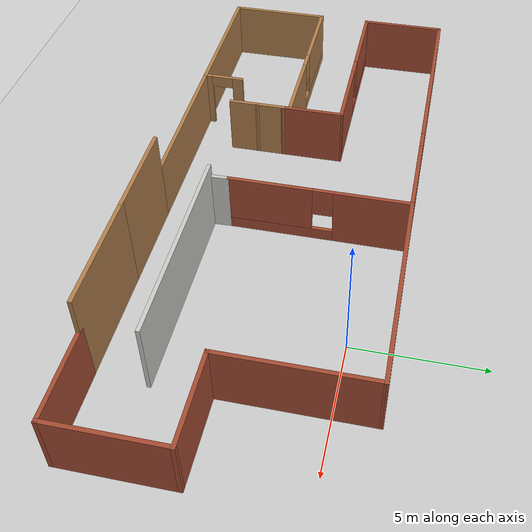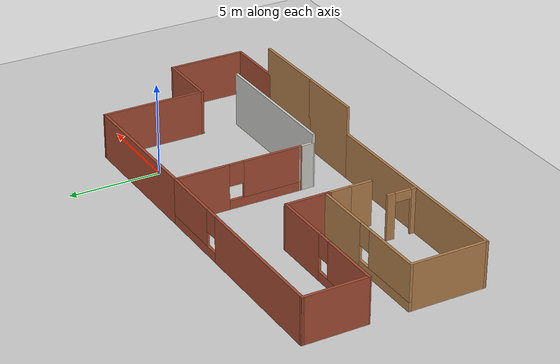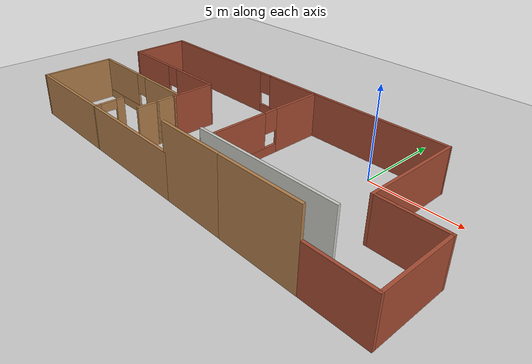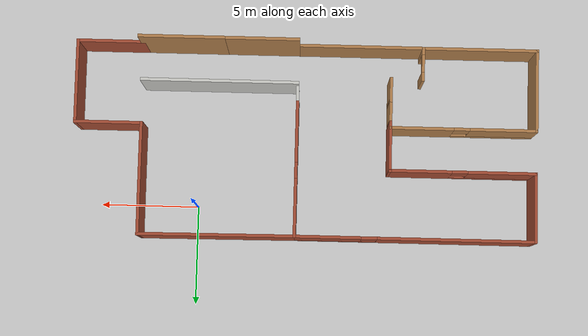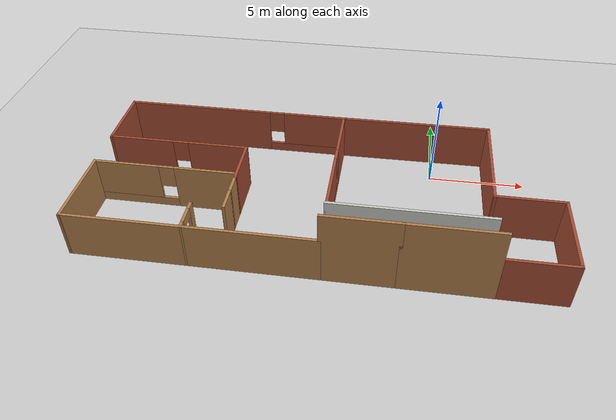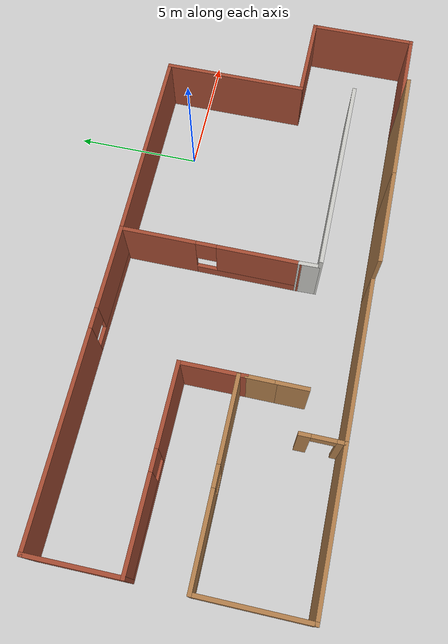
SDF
<sdf version="1.6">
 <world name="default">
  <model name="ground_plane">
   <static>1</static>
   <link name="link">
    <collision name="collision">
     <geometry><plane><normal>0 0 1</normal><size>100 100</size></plane></geometry>
     <surface>
      <contact><collide_bitmask>65535</collide_bitmask></contact>
      <friction><ode><mu>100</mu><mu2>50</mu2></ode></friction>
     </surface>
    </collision>
    <visual name="visual">
     <cast_shadows>0</cast_shadows>
     <geometry><plane><normal>0 0 1</normal><size>100 100</size></plane></geometry>
     <material>
      <script><uri>file://media/materials/scripts/gazebo.material</uri><name>Gazebo/Grey</name></script>
     </material>
    </visual>
   </link>
  </model>
  <model name="robot_house_space">
   <pose>-5.45028 -3.2823 0 0 -0 0</pose>
   <link name="Wall_31">
    <collision name="Wall_31_Collision">
     <geometry><box><size>2.61436 0.15 2.5</size></box></geometry>
     <pose>0 0 1.25 0 -0 0</pose>
    </collision>
    <visual name="Wall_31_Visual">
     <pose>0 0 1.25 0 -0 0</pose>
     <geometry><box><size>2.61436 0.15 2.5</size></box></geometry>
     <material>
      <script><uri>file://media/materials/scripts/gazebo.material</uri><name>Gazebo/Bricks</name></script>
      <ambient>1 1 1 1</ambient>
     </material>
     <meta><layer>0</layer></meta>
    </visual>
    <pose>-4.28923 0.164965 0 0 -0 1.57401</pose>
   </link>
   <link name="Wall_32">
    <pose>-7.96819 1.397 0 0 -0 3.14159</pose>
    <visual name="Wall_32_Visual_0">
     <pose>-2.14641 0 1.25 0 -0 0</pose>
     <geometry><box><size>3.20718 0.15 2.5</size></box></geometry>
     <material>
      <script><uri>file://media/materials/scripts/gazebo.material</uri><name>Gazebo/Bricks</name></script>
      <ambient>1 1 1 1</ambient>
     </material>
     <meta><layer>0</layer></meta>
    </visual>
    <collision name="Wall_32_Collision_0">
     <geometry><box><size>3.20718 0.15 2.5</size></box></geometry>
     <pose>-2.14641 0 1.25 0 -0 0</pose>
    </collision>
    <visual name="Wall_32_Visual_1">
     <pose>1.60359 0 0.25 0 -0 0</pose>
     <geometry><box><size>4.29282 0.15 0.5</size></box></geometry>
     <material>
      <script><uri>file://media/materials/scripts/gazebo.material</uri><name>Gazebo/Bricks</name></script>
      <ambient>1 1 1 1</ambient>
     </material>
     <meta><layer>0</layer></meta>
    </visual>
    <collision name="Wall_32_Collision_1">
     <geometry><box><size>4.29282 0.15 0.5</size></box></geometry>
     <pose>1.60359 0 0.25 0 -0 0</pose>
    </collision>
    <visual name="Wall_32_Visual_2">
     <pose>2.00359 0 1.5 0 -0 0</pose>
     <geometry><box><size>3.49282 0.15 2</size></box></geometry>
     <material>
      <script><uri>file://media/materials/scripts/gazebo.material</uri><name>Gazebo/Bricks</name></script>
      <ambient>1 1 1 1</ambient>
     </material>
     <meta><layer>0</layer></meta>
    </visual>
    <collision name="Wall_32_Collision_2">
     <geometry><box><size>3.49282 0.15 2</size></box></geometry>
     <pose>2.00359 0 1.5 0 -0 0</pose>
    </collision>
    <visual name="Wall_32_Visual_3">
     <pose>-0.142822 0 1.9 0 -0 0</pose>
     <geometry><box><size>0.8 0.15 1.2</size></box></geometry>
     <material>
      <script><uri>file://media/materials/scripts/gazebo.material</uri><name>Gazebo/Bricks</name></script>
      <ambient>1 1 1 1</ambient>
     </material>
     <meta><layer>0</layer></meta>
    </visual>
    <collision name="Wall_32_Collision_3">
     <geometry><box><size>0.8 0.15 1.2</size></box></geometry>
     <pose>-0.142822 0 1.9 0 -0 0</pose>
    </collision>
   </link>
   <link name="Wall_33">
    <collision name="Wall_33_Collision">
     <geometry><box><size>3.58039 0.15 2.5</size></box></geometry>
     <pose>0 0 1.25 0 -0 0</pose>
    </collision>
    <visual name="Wall_33_Visual">
     <pose>0 0 1.25 0 -0 0</pose>
     <geometry><box><size>3.58039 0.15 2.5</size></box></geometry>
     <material>
      <script><uri>file://media/materials/scripts/gazebo.material</uri><name>Gazebo/Bricks</name></script>
      <ambient>1 1 1 1</ambient>
     </material>
     <meta><layer>0</layer></meta>
    </visual>
    <pose>-11.6508 3.11192 0 0 -0 1.57523</pose>
   </link>
   <link name="Wall_34">
    <pose>-5.6084 4.82685 0 0 -0 0</pose>
    <visual name="Wall_34_Visual_0">
     <pose>-2.11826 0 1.25 0 -0 0</pose>
     <geometry><box><size>8.01347 0.15 2.5</size></box></geometry>
     <material>
      <script><uri>file://media/materials/scripts/gazebo.material</uri><name>Gazebo/Bricks</name></script>
      <ambient>1 1 1 1</ambient>
     </material>
     <meta><layer>0</layer></meta>
    </visual>
    <collision name="Wall_34_Collision_0">
     <geometry><box><size>8.01347 0.15 2.5</size></box></geometry>
     <pose>-2.11826 0 1.25 0 -0 0</pose>
    </collision>
    <visual name="Wall_34_Visual_1">
     <pose>4.00674 0 0.25 0 -0 0</pose>
     <geometry><box><size>4.23653 0.15 0.5</size></box></geometry>
     <material>
      <script><uri>file://media/materials/scripts/gazebo.material</uri><name>Gazebo/Bricks</name></script>
      <ambient>1 1 1 1</ambient>
     </material>
     <meta><layer>0</layer></meta>
    </visual>
    <collision name="Wall_34_Collision_1">
     <geometry><box><size>4.23653 0.15 0.5</size></box></geometry>
     <pose>4.00674 0 0.25 0 -0 0</pose>
    </collision>
    <visual name="Wall_34_Visual_2">
     <pose>4.40674 0 1.5 0 -0 0</pose>
     <geometry><box><size>3.43653 0.15 2</size></box></geometry>
     <material>
      <script><uri>file://media/materials/scripts/gazebo.material</uri><name>Gazebo/Bricks</name></script>
      <ambient>1 1 1 1</ambient>
     </material>
     <meta><layer>0</layer></meta>
    </visual>
    <collision name="Wall_34_Collision_2">
     <geometry><box><size>3.43653 0.15 2</size></box></geometry>
     <pose>4.40674 0 1.5 0 -0 0</pose>
    </collision>
    <visual name="Wall_34_Visual_3">
     <pose>2.28847 0 1.9 0 -0 0</pose>
     <geometry><box><size>0.8 0.15 1.2</size></box></geometry>
     <material>
      <script><uri>file://media/materials/scripts/gazebo.material</uri><name>Gazebo/Bricks</name></script>
      <ambient>1 1 1 1</ambient>
     </material>
     <meta><layer>0</layer></meta>
    </visual>
    <collision name="Wall_34_Collision_3">
     <geometry><box><size>0.8 0.15 1.2</size></box></geometry>
     <pose>2.28847 0 1.9 0 -0 0</pose>
    </collision>
   </link>
   <link name="Wall_35">
    <pose>0.441602 1.35115 0 0 -0 -1.5708</pose>
    <visual name="Wall_35_Visual_0">
     <pose>-2.0495 0 1.25 0 -0 0</pose>
     <geometry><box><size>3.00239 0.15 2.5</size></box></geometry>
     <material>
      <script><uri>file://media/materials/scripts/gazebo.material</uri><name>Gazebo/Bricks</name></script>
      <ambient>0.760784 0.662745 0.627451 1</ambient>
     </material>
     <meta><layer>0</layer></meta>
    </visual>
    <collision name="Wall_35_Collision_0">
     <geometry><box><size>3.00239 0.15 2.5</size></box></geometry>
     <pose>-2.0495 0 1.25 0 -0 0</pose>
    </collision>
    <visual name="Wall_35_Visual_1">
     <pose>1.50119 0 0.25 0 -0 0</pose>
     <geometry><box><size>4.09901 0.15 0.5</size></box></geometry>
     <material>
      <script><uri>file://media/materials/scripts/gazebo.material</uri><name>Gazebo/Bricks</name></script>
      <ambient>0.760784 0.662745 0.627451 1</ambient>
     </material>
     <meta><layer>0</layer></meta>
    </visual>
    <collision name="Wall_35_Collision_1">
     <geometry><box><size>4.09901 0.15 0.5</size></box></geometry>
     <pose>1.50119 0 0.25 0 -0 0</pose>
    </collision>
    <visual name="Wall_35_Visual_2">
     <pose>1.90119 0 1.5 0 -0 0</pose>
     <geometry><box><size>3.29901 0.15 2</size></box></geometry>
     <material>
      <script><uri>file://media/materials/scripts/gazebo.material</uri><name>Gazebo/Bricks</name></script>
      <ambient>0.760784 0.662745 0.627451 1</ambient>
     </material>
     <meta><layer>0</layer></meta>
    </visual>
    <collision name="Wall_35_Collision_2">
     <geometry><box><size>3.29901 0.15 2</size></box></geometry>
     <pose>1.90119 0 1.5 0 -0 0</pose>
    </collision>
    <visual name="Wall_35_Visual_3">
     <pose>-0.148309 0 1.9 0 -0 0</pose>
     <geometry><box><size>0.8 0.15 1.2</size></box></geometry>
     <material>
      <script><uri>file://media/materials/scripts/gazebo.material</uri><name>Gazebo/Bricks</name></script>
      <ambient>0.760784 0.662745 0.627451 1</ambient>
     </material>
     <meta><layer>0</layer></meta>
    </visual>
    <collision name="Wall_35_Collision_3">
     <geometry><box><size>0.8 0.15 1.2</size></box></geometry>
     <pose>-0.148309 0 1.9 0 -0 0</pose>
    </collision>
   </link>
   <link name="Wall_39">
    <collision name="Wall_39_Collision">
     <geometry><box><size>1.25 0.15 2.5</size></box></geometry>
     <pose>0 0 1.25 0 -0 0</pose>
    </collision>
    <visual name="Wall_39_Visual">
     <pose>0 0 1.25 0 -0 0</pose>
     <geometry><box><size>1.25 0.15 2.5</size></box></geometry>
     <material>
      <script><uri>file://media/materials/scripts/gazebo.material</uri><name>Gazebo/Wood</name></script>
      <ambient>1 1 1 1</ambient>
     </material>
     <meta><layer>0</layer></meta>
    </visual>
    <pose>-4.28527 -1.61707 0 0 -0 -1.5708</pose>
   </link>
   <link name="Wall_45">
    <collision name="Wall_45_Collision">
     <geometry><box><size>6.5 0.15 2.5</size></box></geometry>
     <pose>0 0 1.25 0 -0 0</pose>
    </collision>
    <visual name="Wall_45_Visual">
     <pose>0 0 1.25 0 -0 0</pose>
     <geometry><box><size>6.5 0.15 2.5</size></box></geometry>
     <material>
      <script><uri>file://media/materials/scripts/gazebo.material</uri><name>Gazebo/Wood</name></script>
      <ambient>1 0.764706 0.305882 1</ambient>
     </material>
     <meta><layer>0</layer></meta>
    </visual>
    <pose>-2.71107 -4.8807 0 0 -0 3.14157</pose>
   </link>
   <link name="Wall_46">
    <pose>-5.88582 -4.08064 0 0 -0 1.5708</pose>
    <visual name="Wall_46_Visual_0">
     <pose>-0.676797 0 1.25 0 -0 0</pose>
     <geometry><box><size>0.396406 0.15 2.5</size></box></geometry>
     <material>
      <script><uri>file://media/materials/scripts/gazebo.material</uri><name>Gazebo/Wood</name></script>
      <ambient>1 1 1 1</ambient>
     </material>
     <meta><layer>0</layer></meta>
    </visual>
    <collision name="Wall_46_Collision_0">
     <geometry><box><size>0.396406 0.15 2.5</size></box></geometry>
     <pose>-0.676797 0 1.25 0 -0 0</pose>
    </collision>
    <visual name="Wall_46_Visual_1">
     <pose>0.648203 0 1.25 0 -0 0</pose>
     <geometry><box><size>0.453594 0.15 2.5</size></box></geometry>
     <material>
      <script><uri>file://media/materials/scripts/gazebo.material</uri><name>Gazebo/Wood</name></script>
      <ambient>1 1 1 1</ambient>
     </material>
     <meta><layer>0</layer></meta>
    </visual>
    <collision name="Wall_46_Collision_1">
     <geometry><box><size>0.453594 0.15 2.5</size></box></geometry>
     <pose>0.648203 0 1.25 0 -0 0</pose>
    </collision>
    <visual name="Wall_46_Visual_2">
     <pose>-0.028594 0 2.25 0 -0 0</pose>
     <geometry><box><size>0.9 0.15 0.5</size></box></geometry>
     <material>
      <script><uri>file://media/materials/scripts/gazebo.material</uri><name>Gazebo/Wood</name></script>
      <ambient>1 1 1 1</ambient>
     </material>
     <meta><layer>0</layer></meta>
    </visual>
    <collision name="Wall_46_Collision_2">
     <geometry><box><size>0.9 0.15 0.5</size></box></geometry>
     <pose>-0.028594 0 2.25 0 -0 0</pose>
    </collision>
   </link>
   <link name="Wall_48">
    <collision name="Wall_48_Collision">
     <geometry><box><size>1.26357 0.15 2.5</size></box></geometry>
     <pose>0 0 1.25 0 -0 0</pose>
    </collision>
    <visual name="Wall_48_Visual">
     <pose>0 0 1.25 0 -0 0</pose>
     <geometry><box><size>1.26357 0.15 2.5</size></box></geometry>
     <material>
      <script><uri>file://media/materials/scripts/gazebo.material</uri><name>Gazebo/Wood</name></script>
      <ambient>1 1 1 1</ambient>
     </material>
     <meta><layer>0</layer></meta>
    </visual>
    <pose>-4.28554 -2.72385 0 0 -0 1.5703</pose>
   </link>
   <link name="Wall_50">
    <pose>-7.9864 -0.781344 0 0 -0 3.14159</pose>
    <visual name="Wall_50_Visual_0">
     <pose>-2.12429 0 1.25 0 -0 0</pose>
     <geometry><box><size>3.25142 0.15 2.5</size></box></geometry>
     <material>
      <script><uri>file://media/materials/scripts/gazebo.material</uri><name>Gazebo/Wood</name></script>
      <ambient>1 1 1 1</ambient>
     </material>
     <meta><layer>0</layer></meta>
    </visual>
    <collision name="Wall_50_Collision_0">
     <geometry><box><size>3.25142 0.15 2.5</size></box></geometry>
     <pose>-2.12429 0 1.25 0 -0 0</pose>
    </collision>
    <visual name="Wall_50_Visual_1">
     <pose>1.62571 0 0.25 0 -0 0</pose>
     <geometry><box><size>4.24858 0.15 0.5</size></box></geometry>
     <material>
      <script><uri>file://media/materials/scripts/gazebo.material</uri><name>Gazebo/Wood</name></script>
      <ambient>1 1 1 1</ambient>
     </material>
     <meta><layer>0</layer></meta>
    </visual>
    <collision name="Wall_50_Collision_1">
     <geometry><box><size>4.24858 0.15 0.5</size></box></geometry>
     <pose>1.62571 0 0.25 0 -0 0</pose>
    </collision>
    <visual name="Wall_50_Visual_2">
     <pose>2.02571 0 1.5 0 -0 0</pose>
     <geometry><box><size>3.44858 0.15 2</size></box></geometry>
     <material>
      <script><uri>file://media/materials/scripts/gazebo.material</uri><name>Gazebo/Wood</name></script>
      <ambient>1 1 1 1</ambient>
     </material>
     <meta><layer>0</layer></meta>
    </visual>
    <collision name="Wall_50_Collision_2">
     <geometry><box><size>3.44858 0.15 2</size></box></geometry>
     <pose>2.02571 0 1.5 0 -0 0</pose>
    </collision>
    <visual name="Wall_50_Visual_3">
     <pose>-0.098582 0 1.9 0 -0 0</pose>
     <geometry><box><size>0.8 0.15 1.2</size></box></geometry>
     <material>
      <script><uri>file://media/materials/scripts/gazebo.material</uri><name>Gazebo/Wood</name></script>
      <ambient>1 1 1 1</ambient>
     </material>
     <meta><layer>0</layer></meta>
    </visual>
    <collision name="Wall_50_Collision_3">
     <geometry><box><size>0.8 0.15 1.2</size></box></geometry>
     <pose>-0.098582 0 1.9 0 -0 0</pose>
    </collision>
   </link>
   <link name="Wall_51">
    <collision name="Wall_51_Collision">
     <geometry><box><size>4.25 0.15 2.5</size></box></geometry>
     <pose>0 0 1.25 0 -0 0</pose>
    </collision>
    <visual name="Wall_51_Visual">
     <pose>0 0 1.25 0 -0 0</pose>
     <geometry><box><size>4.25 0.15 2.5</size></box></geometry>
     <material>
      <script><uri>file://media/materials/scripts/gazebo.material</uri><name>Gazebo/Wood</name></script>
      <ambient>1 1 1 1</ambient>
     </material>
     <meta><layer>0</layer></meta>
    </visual>
    <pose>-11.6614 -2.83134 0 0 -0 -1.5708</pose>
   </link>
   <link name="Wall_52">
    <collision name="Wall_52_Collision">
     <geometry><box><size>5.92561 0.15 2.5</size></box></geometry>
     <pose>0 0 1.25 0 -0 0</pose>
    </collision>
    <visual name="Wall_52_Visual">
     <pose>0 0 1.25 0 -0 0</pose>
     <geometry><box><size>5.92561 0.15 2.5</size></box></geometry>
     <material>
      <script><uri>file://media/materials/scripts/gazebo.material</uri><name>Gazebo/Wood</name></script>
      <ambient>1 0.764706 0.305882 1</ambient>
     </material>
     <meta><layer>0</layer></meta>
    </visual>
    <pose>-8.77361 -4.88099 0 0 -0 0.000122</pose>
   </link>
   <link name="Wall_55">
    <collision name="Wall_55_Collision">
     <geometry><box><size>3.72131 0.15 4</size></box></geometry>
     <pose>0 0 2 0 -0 0</pose>
    </collision>
    <visual name="Wall_55_Visual">
     <pose>0 0 2 0 -0 0</pose>
     <geometry><box><size>3.72131 0.15 4</size></box></geometry>
     <material>
      <script><uri>file://media/materials/scripts/gazebo.material</uri><name>Gazebo/Wood</name></script>
      <ambient>1 1 1 1</ambient>
     </material>
     <meta><layer>0</layer></meta>
    </visual>
    <pose>2.24969 -4.88076 0 0 -0 0</pose>
   </link>
   <link name="Wall_56">
    <collision name="Wall_56_Collision">
     <geometry><box><size>4.5 0.15 4</size></box></geometry>
     <pose>0 0 2 0 -0 0</pose>
    </collision>
    <visual name="Wall_56_Visual">
     <pose>0 0 2 0 -0 0</pose>
     <geometry><box><size>4.5 0.15 4</size></box></geometry>
     <material>
      <script><uri>file://media/materials/scripts/gazebo.material</uri><name>Gazebo/Wood</name></script>
      <ambient>1 1 1 1</ambient>
     </material>
     <meta><layer>0</layer></meta>
    </visual>
    <pose>6.21069 -4.88076 0 0 -0 0</pose>
   </link>
   <link name="Wall_59">
    <collision name="Wall_59_Collision">
     <geometry><box><size>8 0.15 3</size></box></geometry>
     <pose>0 0 1.5 0 -0 0</pose>
    </collision>
    <visual name="Wall_59_Visual">
     <pose>0 0 1.5 0 -0 0</pose>
     <geometry><box><size>8 0.15 3</size></box></geometry>
     <material>
      <script><uri>file://media/materials/scripts/gazebo.material</uri><name>Gazebo/CeilingTiled</name></script>
      <ambient>1 1 1 1</ambient>
     </material>
     <meta><layer>0</layer></meta>
    </visual>
    <pose>4.38669 -2.87716 0 0 -0 0</pose>
   </link>
   <link name="Wall_61">
    <collision name="Wall_61_Collision">
     <geometry><box><size>0.90288 0.15 2.5</size></box></geometry>
     <pose>0 0 1.25 0 -0 0</pose>
    </collision>
    <visual name="Wall_61_Visual">
     <pose>0 0 1.25 0 -0 0</pose>
     <geometry><box><size>0.90288 0.15 2.5</size></box></geometry>
     <material>
      <script><uri>file://media/materials/scripts/gazebo.material</uri><name>Gazebo/CeilingTiled</name></script>
      <ambient>1 1 1 1</ambient>
     </material>
     <meta><layer>0</layer></meta>
    </visual>
    <pose>0.451646 -2.50085 0 0 -0 -1.54411</pose>
   </link>
   <link name="Wall_64">
    <collision name="Wall_64_Collision">
     <geometry><box><size>3.5 0.15 2.5</size></box></geometry>
     <pose>0 0 1.25 0 -0 0</pose>
    </collision>
    <visual name="Wall_64_Visual">
     <pose>0 0 1.25 0 -0 0</pose>
     <geometry><box><size>3.5 0.15 2.5</size></box></geometry>
     <material>
      <script><uri>file://media/materials/scripts/gazebo.material</uri><name>Gazebo/Bricks</name></script>
      <ambient>1 1 1 1</ambient>
     </material>
     <meta><layer>0</layer></meta>
    </visual>
    <pose>9.98643 -0.719159 0 0 -0 0</pose>
   </link>
   <link name="Wall_65">
    <collision name="Wall_65_Collision">
     <geometry><box><size>4.30761 0.15 2.5</size></box></geometry>
     <pose>0 0 1.25 0 -0 0</pose>
    </collision>
    <visual name="Wall_65_Visual">
     <pose>0 0 1.25 0 -0 0</pose>
     <geometry><box><size>4.30761 0.15 2.5</size></box></geometry>
     <material>
      <script><uri>file://media/materials/scripts/gazebo.material</uri><name>Gazebo/Bricks</name></script>
      <ambient>1 1 1 1</ambient>
     </material>
     <meta><layer>0</layer></meta>
    </visual>
    <pose>11.6614 -2.79796 0 0 -0 -1.5708</pose>
   </link>
   <link name="Wall_66">
    <collision name="Wall_66_Collision">
     <geometry><box><size>3.5 0.15 2.5</size></box></geometry>
     <pose>0 0 1.25 0 -0 0</pose>
    </collision>
    <visual name="Wall_66_Visual">
     <pose>0 0 1.25 0 -0 0</pose>
     <geometry><box><size>3.5 0.15 2.5</size></box></geometry>
     <material>
      <script><uri>file://media/materials/scripts/gazebo.material</uri><name>Gazebo/Bricks</name></script>
      <ambient>1 1 1 1</ambient>
     </material>
     <meta><layer>0</layer></meta>
    </visual>
    <pose>9.98643 -4.87677 0 0 -0 3.14159</pose>
   </link>
   <link name="Wall_67">
    <collision name="Wall_67_Collision">
     <geometry><box><size>0.15 0.15 2.5</size></box></geometry>
     <pose>0 0 1.25 0 -0 0</pose>
    </collision>
    <visual name="Wall_67_Visual">
     <pose>0 0 1.25 0 -0 0</pose>
     <geometry><box><size>0.15 0.15 2.5</size></box></geometry>
     <material>
      <script><uri>file://media/materials/scripts/gazebo.material</uri><name>Gazebo/Grey</name></script>
      <ambient>1 1 1 1</ambient>
     </material>
     <meta><layer>0</layer></meta>
    </visual>
    <pose>8.31142 -4.87677 0 0 -0 0</pose>
   </link>
   <link name="Wall_68">
    <collision name="Wall_68_Collision">
     <geometry><box><size>0.15 0.15 2.5</size></box></geometry>
     <pose>0 0 1.25 0 -0 0</pose>
    </collision>
    <visual name="Wall_68_Visual">
     <pose>0 0 1.25 0 -0 0</pose>
     <geometry><box><size>0.15 0.15 2.5</size></box></geometry>
     <material>
      <script><uri>file://media/materials/scripts/gazebo.material</uri><name>Gazebo/Grey</name></script>
      <ambient>1 1 1 1</ambient>
     </material>
     <meta><layer>0</layer></meta>
    </visual>
    <pose>8.31142 -4.87677 0 0 -0 0</pose>
   </link>
   <link name="Wall_69">
    <collision name="Wall_69_Collision">
     <geometry><box><size>0.15 0.15 2.5</size></box></geometry>
     <pose>0 0 1.25 0 -0 0</pose>
    </collision>
    <visual name="Wall_69_Visual">
     <pose>0 0 1.25 0 -0 0</pose>
     <geometry><box><size>0.15 0.15 2.5</size></box></geometry>
     <material>
      <script><uri>file://media/materials/scripts/gazebo.material</uri><name>Gazebo/Grey</name></script>
      <ambient>1 1 1 1</ambient>
     </material>
     <meta><layer>0</layer></meta>
    </visual>
    <pose>8.31142 -4.87677 0 0 -0 0</pose>
   </link>
   <link name="Wall_70">
    <collision name="Wall_70_Collision">
     <geometry><box><size>0.15 0.15 2.5</size></box></geometry>
     <pose>0 0 1.25 0 -0 0</pose>
    </collision>
    <visual name="Wall_70_Visual">
     <pose>0 0 1.25 0 -0 0</pose>
     <geometry><box><size>0.15 0.15 2.5</size></box></geometry>
     <material>
      <script><uri>file://media/materials/scripts/gazebo.material</uri><name>Gazebo/Grey</name></script>
      <ambient>1 1 1 1</ambient>
     </material>
     <meta><layer>0</layer></meta>
    </visual>
    <pose>8.31142 -4.87677 0 0 -0 0</pose>
   </link>
   <link name="Wall_73">
    <collision name="Wall_73_Collision">
     <geometry><box><size>5.75 0.15 2.5</size></box></geometry>
     <pose>0 0 1.25 0 -0 0</pose>
    </collision>
    <visual name="Wall_73_Visual">
     <pose>0 0 1.25 0 -0 0</pose>
     <geometry><box><size>5.75 0.15 2.5</size></box></geometry>
     <material>
      <script><uri>file://media/materials/scripts/gazebo.material</uri><name>Gazebo/Bricks</name></script>
      <ambient>1 1 1 1</ambient>
     </material>
     <meta><layer>0</layer></meta>
    </visual>
    <pose>8.31142 2.08084 0 0 -0 1.5708</pose>
   </link>
   <link name="Wall_74">
    <collision name="Wall_74_Collision">
     <geometry><box><size>8.02001 0.15 2.5</size></box></geometry>
     <pose>0 0 1.25 0 -0 0</pose>
    </collision>
    <visual name="Wall_74_Visual">
     <pose>0 0 1.25 0 -0 0</pose>
     <geometry><box><size>8.02001 0.15 2.5</size></box></geometry>
     <material>
      <script><uri>file://media/materials/scripts/gazebo.material</uri><name>Gazebo/Bricks</name></script>
      <ambient>1 1 1 1</ambient>
     </material>
     <meta><layer>0</layer></meta>
    </visual>
    <pose>4.37651 4.85384 0 0 -0 -3.13473</pose>
   </link>
   <static>1</static>
  </model>
 </world>
</sdf>
